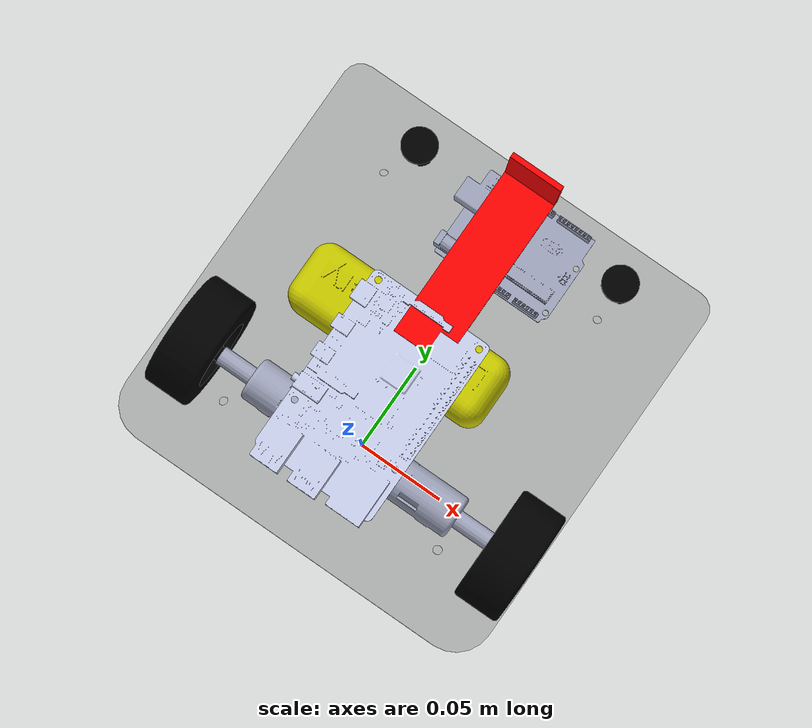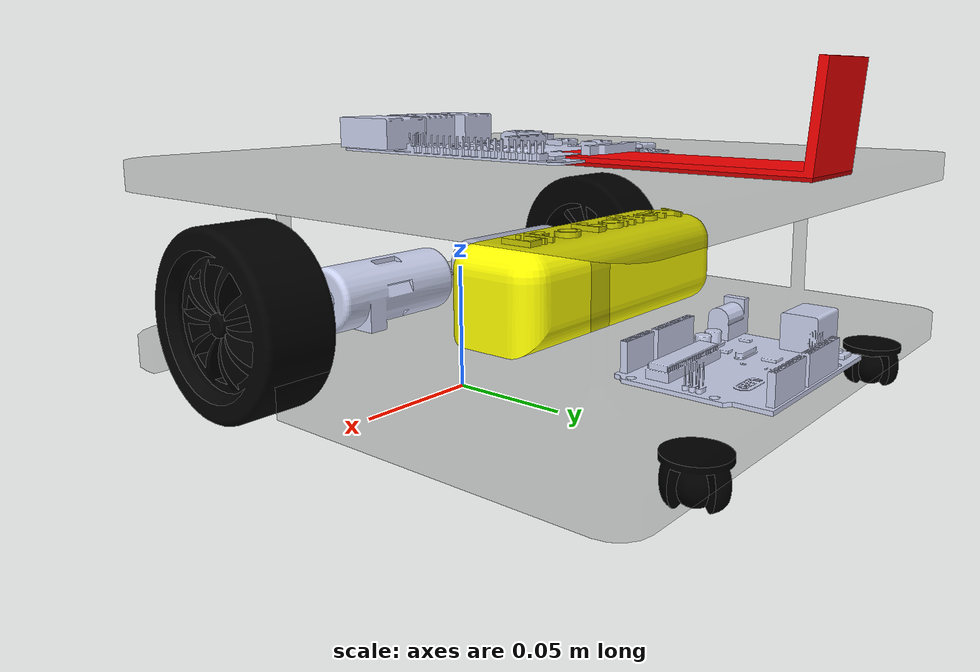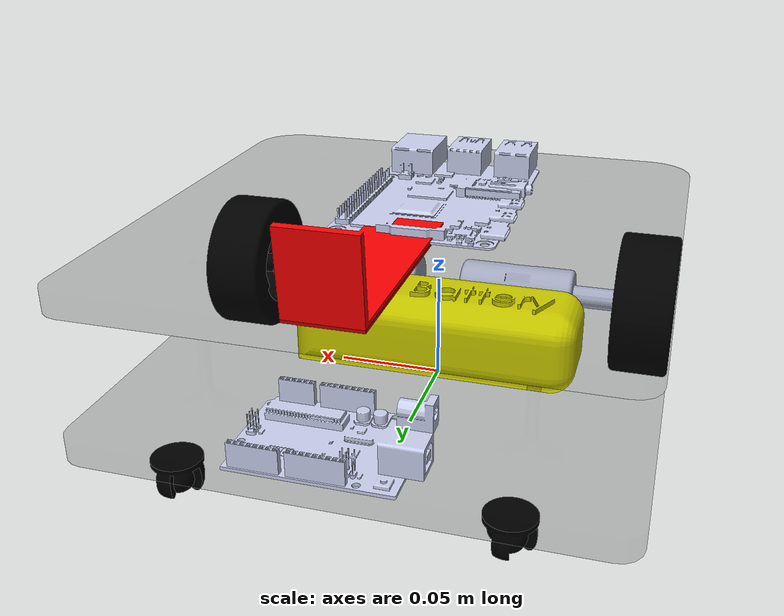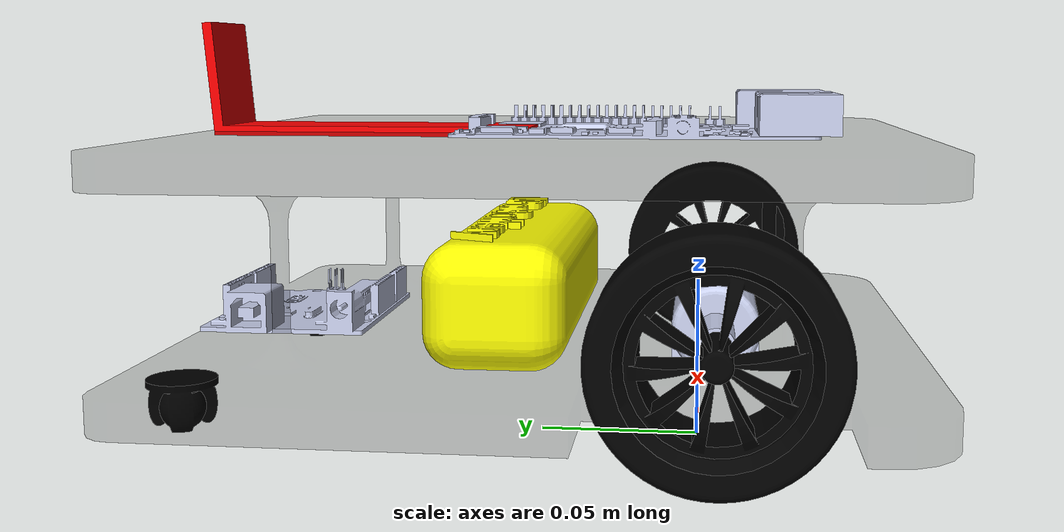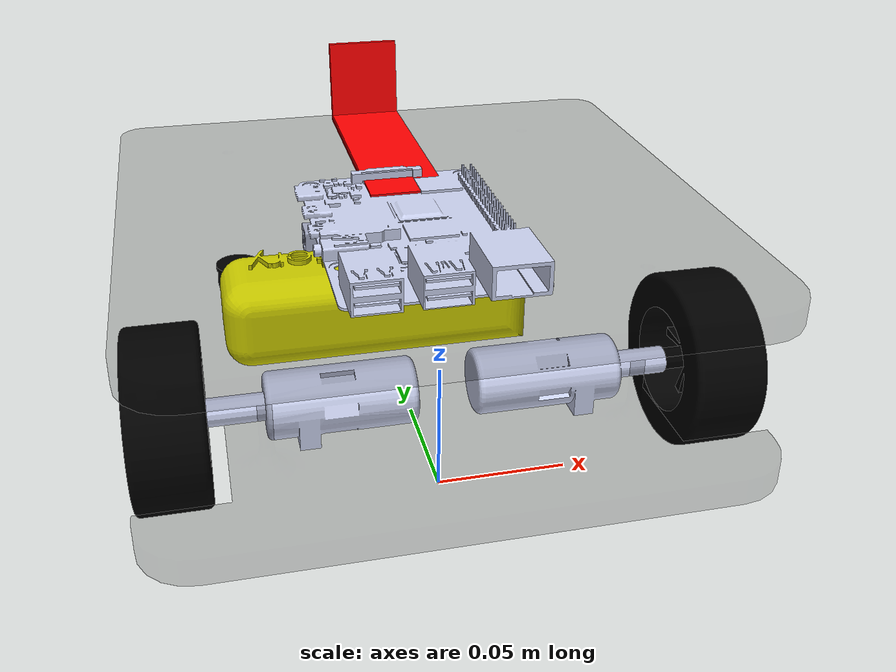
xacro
<?xml version="1.0"?>

<robot name ="robo1" xmlns:xacro="http://wiki.ros.org/xacro">

	<xacro:include filename="$(find robo1)/urdf/robo1.urdf"/>
	<!--xacro:include filename="$(find robo1)/urdf/camera.urdf"/-->

	<gazebo>
		<plugin name="gazebo_ros_control" filename="libgazebo_ros_control.so">
			<robotNamespace>/robo1</robotNamespace>
			<robotSimType>gazebo_ros_control/DefaultRobotHWSim</robotSimType>
			<legacyModeNS>true</legacyModeNS>
		</plugin>
	</gazebo>

</robot>

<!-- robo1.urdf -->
<robot
  name="robo1">

  <material name="black">
    <color rgba="0.0 0.0 0.0 1.0"/>
  </material>

  <material name="red">
    <color rgba="0.8 0.0 0.0 1.0"/>
  </material>

  <material name="white">
    <color rgba="1.0 1.0 1.0 1.0"/>
  </material>

  <link
    name="dummy_base_link">
  </link>

  <joint
    name="base_to_dummy_joint"
    type="fixed">
    <origin
      xyz="0 0 0.035"
      rpy="-1.5707963267 0 -1.5707963267" />
    <parent
      link="dummy_base_link"  />
    <child
      link="base_link"  />
  </joint>

  <link
    name="base_link">
    <inertial>
      <origin
        xyz="-0.050277 1.5878E-17 -0.0039091"
        rpy="0 0 0" />
      <mass
        value="4.5001" />
      <inertia
        ixx="0.016105"
        ixy="3.9894E-4"
        ixz="-2.5907E-3"
        iyy="0.18761"
        iyz="1.6927E-4"
        izz="0.34323" />
    </inertial>
    <visual>
      <origin
        xyz="0 0 0"
        rpy="0 0 0" />
      <geometry>
        <mesh
          filename="package://robo1/meshes/base_link.STL" />
      </geometry>
      <material
        name="">
        <color
          rgba="0 0 0 0.2" />
      </material>
    </visual>
    <collision>
      <origin
        xyz="0 0 0"
        rpy="0 0 0" />
      <geometry>
        <mesh
          filename="package://robo1/meshes/base_link.STL" />
      </geometry>
    </collision>
  </link>
  <link
    name="top_link">
    <inertial>
      <origin
        xyz="-0.04528 1.3465E-17 -0.005"
        rpy="0 0 0" />
      <mass
        value="0.48107" />
      <inertia
        ixx="0.0019287"
        ixy="2.8403E-19"
        ixz="3.8178E-21"
        iyy="0.0019281"
        iyz="-3.4909E-21"
        izz="0.0038488" />
    </inertial>
    <visual>
      <origin
        xyz="0 0 0"
        rpy="0 0 0" />
      <geometry>
        <mesh
          filename="package://robo1/meshes/top_link.STL" />
      </geometry>
      <material
        name="">
        <color
          rgba="0 0 0 0.2" />
      </material>
    </visual>
    <collision>
      <origin
        xyz="0 0 0"
        rpy="0 0 0" />
      <geometry>
        <mesh
          filename="package://robo1/meshes/top_link.STL" />
      </geometry>
    </collision>
  </link>
  <joint
    name="top_joint"
    type="fixed">
    <origin
      xyz="0 -0.062 0"
      rpy="1.5708 0 0" />
    <parent
      link="base_link" />
    <child
      link="top_link" />
    <axis
      xyz="0 0 0" />
  </joint>
  <link
    name="rpi_link">
    <inertial>
      <origin
        xyz="-0.0032059 0.075568 0.0051311"
        rpy="0 0 0" />
      <mass
        value="0.018105" />
      <inertia
        ixx="3.1358E-06"
        ixy="-5.9316E-09"
        ixz="2.6139E-10"
        iyy="9.7625E-06"
        iyz="2.0861E-10"
        izz="6.8317E-06" />
    </inertial>
    <visual>
      <origin
        xyz="0 0 0"
        rpy="0 0 0" />
      <geometry>
        <mesh
          filename="package://robo1/meshes/rpi_link.STL" />
      </geometry>
      <material
        name="">
        <color
          rgba="0.79216 0.81961 0.93333 1" />
      </material>
    </visual>
    <collision>
      <origin
        xyz="0 0 0"
        rpy="0 0 0" />
      <geometry>
        <mesh
          filename="package://robo1/meshes/rpi_link.STL" />
      </geometry>
    </collision>
  </link>
  <joint
    name="rpi_joint"
    type="fixed">
    <origin
      xyz="0 0 -0.072"
      rpy="1.5708 0 0" />
    <parent
      link="top_link" />
    <child
      link="rpi_link" />
    <axis
      xyz="0 0 0" />
  </joint>
  <link
    name="camhold_link">
    <inertial>
      <origin
        xyz="0.0060631 -0.017238 0.0029511"
        rpy="0 0 0" />
      <mass
        value="0.0085111" />
      <inertia
        ixx="1.1884E-06"
        ixy="3.3421E-07"
        ixz="-4.5393E-23"
        iyy="8.8896E-07"
        iyz="6.2131E-23"
        izz="1.5005E-06" />
    </inertial>
    <visual>
      <origin
        xyz="0 0 0"
        rpy="0 0 0" />
      <geometry>
        <mesh
          filename="package://robo1/meshes/camhold_link.STL" />
      </geometry>
      <material
        name="">
        <color
          rgba="1 0 0 1" />
      </material>
    </visual>
    <collision>
      <origin
        xyz="0 0 0"
        rpy="0 0 0" />
      <geometry>
        <mesh
          filename="package://robo1/meshes/camhold_link.STL" />
      </geometry>
    </collision>
  </link>
  <joint
    name="camhold_joint"
    type="fixed">
    <origin
      xyz="-0.155 0.015 0.034"
      rpy="3.14159 0 0" />
    <parent
      link="top_link" />
    <child
      link="camhold_link" />
    <axis
      xyz="0 0 0" />
  </joint>
  <link
    name="motorR_link">
    <inertial>
      <origin
        xyz="0.00016384 0.028949 8.6736E-19"
        rpy="0 0 0" />
      <mass
        value="0.025532" />
      <inertia
        ixx="8.4702E-06"
        ixy="-4.1514E-08"
        ixz="8.7543E-23"
        iyy="1.7671E-06"
        iyz="-1.2558E-22"
        izz="8.4695E-06" />
    </inertial>
    <visual>
      <origin
        xyz="0 0 0"
        rpy="0 0 0" />
      <geometry>
        <mesh
          filename="package://robo1/meshes/motorR_link.STL" />
      </geometry>
      <material
        name="">
        <color
          rgba="0.79216 0.81961 0.93333 1" />
      </material>
    </visual>
    <collision>
      <origin
        xyz="0 0 0"
        rpy="0 0 0" />
      <geometry>
        <mesh
          filename="package://robo1/meshes/motorR_link.STL" />
      </geometry>
    </collision>
  </link>
  <joint
    name="motorR_joint"
    type="fixed">
    <origin
      xyz="0.005 -0.012 0.01075"
      rpy="1.5708 0 1.5708" />
    <parent
      link="base_link" />
    <child
      link="motorR_link" />
    <axis
      xyz="0 0 0" />
  </joint>
  <link
    name="wheelR_link">
    <inertial>
      <origin
        xyz="-0.012902 5.8214E-11 3.3057E-07"
        rpy="0 0 0" />
      <mass
        value="0.56366" />
      <inertia
        ixx="3.7787E-02"
        ixy="-2.3415E-4"
        ixz="2.1909E-4"
        iyy="2.1814E-3"
        iyz="-2.0943E-5"
        izz="2.1815E-5" />
    </inertial>
    <visual>
      <origin
        xyz="0 0 0"
        rpy="0 0 0" />
      <geometry>
        <mesh
          filename="package://robo1/meshes/wheelR_link.STL" />
      </geometry>
      <material
        name="black">
      </material>
    </visual>
    <collision>
      <origin
        xyz="0 0 0"
        rpy="0 0 0" />
      <geometry>
        <mesh
          filename="package://robo1/meshes/wheelR_link.STL" />
      </geometry>
    </collision>
  </link>
  <joint
    name="wheelR_joint"
    type="fixed">
    <origin
      xyz="0 0.073 0"
      rpy="1.9007 0 -1.5708" />
    <parent
      link="motorR_link" />
    <child
      link="wheelR_link" />
    <axis
      xyz="1 0 0" />
  </joint>
  <link
    name="motorL_link">
    <inertial>
      <origin
        xyz="0.00016384 0.028949 2.6021E-18"
        rpy="0 0 0" />
      <mass
        value="0.025532" />
      <inertia
        ixx="8.4702E-06"
        ixy="-4.1514E-08"
        ixz="6.8393E-23"
        iyy="1.7671E-06"
        iyz="-8.1516E-22"
        izz="8.4695E-06" />
    </inertial>
    <visual>
      <origin
        xyz="0 0 0"
        rpy="0 0 0" />
      <geometry>
        <mesh
          filename="package://robo1/meshes/motorL_link.STL" />
      </geometry>
      <material
        name="">
        <color
          rgba="0.79216 0.81961 0.93333 1" />
      </material>
    </visual>
    <collision>
      <origin
        xyz="0 0 0"
        rpy="0 0 0" />
      <geometry>
        <mesh
          filename="package://robo1/meshes/motorL_link.STL" />
      </geometry>
    </collision>
  </link>
  <joint
    name="motorL_joint"
    type="fixed">
    <origin
      xyz="0.005 -0.012 -0.01075"
      rpy="-1.5708 0 1.5708" />
    <parent
      link="base_link" />
    <child
      link="motorL_link" />
    <axis
      xyz="0 0 0" />
  </joint>
  <link
    name="wheelL_link">
    <inertial>
      <origin
        xyz="-0.012902 5.8214E-11 3.3057E-07"
        rpy="0 0 0" />
      <mass
        value="0.56366" />
      <inertia
        ixx="3.7787E-02"
        ixy="-2.3415E-4"
        ixz="2.1909E-4"
        iyy="2.1814E-3"
        iyz="-2.0943E-5"
        izz="2.1815E-5" />
    </inertial>
    <visual>
      <origin
        xyz="0 0 0"
        rpy="0 0 0" />
      <geometry>
        <mesh
          filename="package://robo1/meshes/wheelL_link.STL" />
      </geometry>
      <material
        name="black">
      </material>
    </visual>
    <collision>
      <origin
        xyz="0 0 0"
        rpy="0 0 0" />
      <geometry>
        <mesh
          filename="package://robo1/meshes/wheelL_link.STL" />
      </geometry>
    </collision>
  </link>
  <joint
    name="wheelL_joint"
    type="fixed">
    <origin
      xyz="0 0.073 0"
      rpy="-1.3561 0 -1.5708" />
    <parent
      link="motorL_link" />
    <child
      link="wheelL_link" />
    <axis
      xyz="1 0 0" />
  </joint>
  <link
    name="castor1_link">
    <inertial>
      <origin
        xyz="-9.3404E-10 0.006163 4.9149E-09"
        rpy="0 0 0" />
      <mass
        value="0.0025376" />
      <inertia
        ixx="8.8742E-08"
        ixy="1.3854E-14"
        ixz="-4.889E-14"
        iyy="9.142E-08"
        iyz="-3.3654E-14"
        izz="8.8742E-08" />
    </inertial>
    <visual>
      <origin
        xyz="0 0 0"
        rpy="0 0 0" />
      <geometry>
        <mesh
          filename="package://robo1/meshes/castor1_link.STL" />
      </geometry>
      <material
        name="black">
      </material>
    </visual>
    <collision>
      <origin
        xyz="0 0 0"
        rpy="0 0 0" />
      <geometry>
        <mesh
          filename="package://robo1/meshes/castor1_link.STL" />
      </geometry>
    </collision>
  </link>
  <joint
    name="castor1_joint"
    type="fixed">
    <origin
      xyz="-0.145 0.005 0.06375"
      rpy="3.1416 -1.5708 3.14159" />
    <parent
      link="base_link" />
    <child
      link="castor1_link" />
    <axis
      xyz="0 0 0" />
  </joint>
  <link
    name="castor2_link">
    <inertial>
      <origin
        xyz="-9.3404E-10 0.006163 4.9149E-09"
        rpy="0 0 0" />
      <mass
        value="0.0025376" />
      <inertia
        ixx="8.8742E-08"
        ixy="1.3854E-14"
        ixz="-4.889E-14"
        iyy="9.142E-08"
        iyz="-3.3654E-14"
        izz="8.8742E-08" />
    </inertial>
    <visual>
      <origin
        xyz="0 0 0"
        rpy="0 0 0" />
      <geometry>
        <mesh
          filename="package://robo1/meshes/castor2_link.STL" />
      </geometry>
      <material
        name="black">
      </material>
    </visual>
    <collision>
      <origin
        xyz="0 0 0"
        rpy="0 0 0" />
      <geometry>
        <mesh
          filename="package://robo1/meshes/castor2_link.STL" />
      </geometry>
    </collision>
  </link>
  <joint
    name="castor2_joint"
    type="fixed">
    <origin
      xyz="-0.145 0.005 -0.06375"
      rpy="3.1416 -1.5708 3.14159" />
    <parent
      link="base_link" />
    <child
      link="castor2_link" />
    <axis
      xyz="0 0 0" />
  </joint>
  <link
    name="arduino_link">
    <inertial>
      <origin
        xyz="0.0014319 -0.001834 0.003602"
        rpy="0 0 0" />
      <mass
        value="0.010674" />
      <inertia
        ixx="2.6737E-06"
        ixy="2.9619E-07"
        ixz="3.2048E-07"
        iyy="5.0764E-06"
        iyz="-1.2762E-08"
        izz="7.4555E-06" />
    </inertial>
    <visual>
      <origin
        xyz="0 0 0"
        rpy="0 0 0" />
      <geometry>
        <mesh
          filename="package://robo1/meshes/arduino_link.STL" />
      </geometry>
      <material
        name="">
        <color
          rgba="0.79216 0.81961 0.93333 1" />
      </material>
    </visual>
    <collision>
      <origin
        xyz="0 0 0"
        rpy="0 0 0" />
      <geometry>
        <mesh
          filename="package://robo1/meshes/arduino_link.STL" />
      </geometry>
    </collision>
  </link>
  <joint
    name="arduino_joint"
    type="fixed">
    <origin
      xyz="-0.12896 0 0"
      rpy="1.5708 -1.5708 0" />
    <parent
      link="base_link" />
    <child
      link="arduino_link" />
    <axis
      xyz="0 0 0" />
  </joint>
  <link
    name="battery_link">
    <inertial>
      <origin
        xyz="0 0 0"
        rpy="0 0 0" />
      <mass
        value="0.010674" />
      <inertia
        ixx="2.6737E-06"
        ixy="2.9619E-07"
        ixz="3.2048E-07"
        iyy="5.0764E-06"
        iyz="-1.2762E-08"
        izz="7.4555E-06" />
    </inertial>
    <visual>
      <origin
        xyz="0 0 0"
        rpy="0 0 0" />
      <geometry>
        <mesh
          filename="package://robo1/meshes/battery_link.STL" />
      </geometry>
      <material
        name="">
        <color
          rgba="1 1 0 1" />
      </material>
    </visual>
    <collision>
      <origin
        xyz="0 0 0"
        rpy="0 0 0" />
      <geometry>
        <mesh
          filename="package://robo1/meshes/battery_link.STL" />
      </geometry>
    </collision>
  </link>
  <joint
    name="battery_joint"
    type="fixed">
    <origin
      xyz="-0.035021 0 0.045843"
      rpy="3.1416 0 0" />
    <parent
      link="base_link" />
    <child
      link="battery_link" />
    <axis
      xyz="0 0 0" />
  </joint>

  <gazebo reference="camhold_link">
    <material>Gazebo/Red</material>
  </gazebo>
  <gazebo reference="battery_link">
    <material>Gazebo/ZincYellow</material>
  </gazebo>
  <gazebo reference="base_link">
    <material>Gazebo/BlackTransparent</material>
  </gazebo>
  <gazebo reference="top_link">
    <material>Gazebo/BlackTransparent</material>
  </gazebo>
  <gazebo reference="wheelR_link">
    <material>Gazebo/Black</material>
  </gazebo>
  <gazebo reference="wheelL_link">
    <material>Gazebo/Black</material>
  </gazebo>
  <gazebo reference="castor1_link">
    <material>Gazebo/Black</material>
  </gazebo>
  <gazebo reference="castor2_link">
    <material>Gazebo/Black</material>
  </gazebo>

  <transmission name="wheelR_trans">
    <type>transmission_interface/SimpleTransmission</type>
    <joint name="wheelR_joint">
      <hardwareInterface>hardware_interface/VelocityJointInterface</hardwareInterface>
    </joint>
    <actuator name="driveR_motor">
      <mechanicalReduction>50</mechanicalReduction>
      <hardwareInterface>hardware_interface/VelocityJointInterface</hardwareInterface>
    </actuator>
  </transmission>

  <transmission name="wheelL_trans">
    <type>transmission_interface/SimpleTransmission</type>
    <joint name="wheelL_joint">
      <hardwareInterface>hardware_interface/VelocityJointInterface</hardwareInterface>
    </joint>
    <actuator name="driveL_motor">
      <mechanicalReduction>50</mechanicalReduction>
      <hardwareInterface>hardware_interface/VelocityJointInterface</hardwareInterface>
    </actuator>
  </transmission>

</robot>
